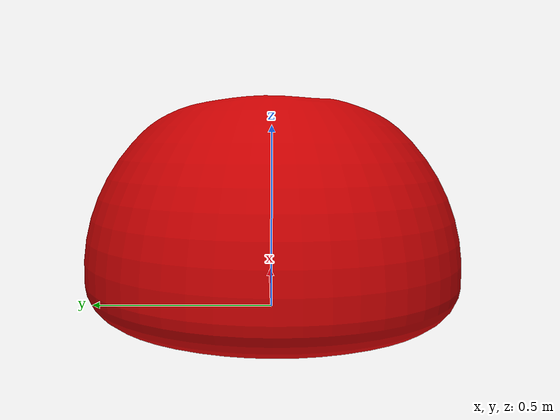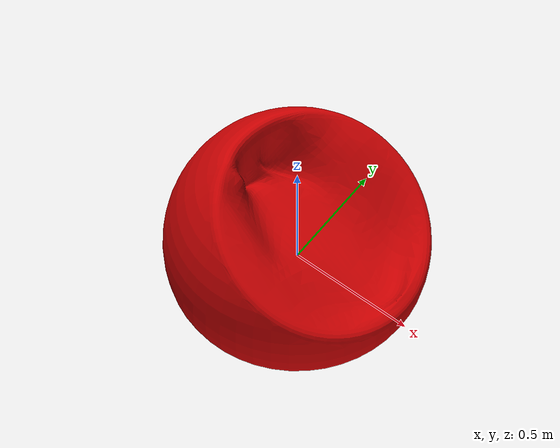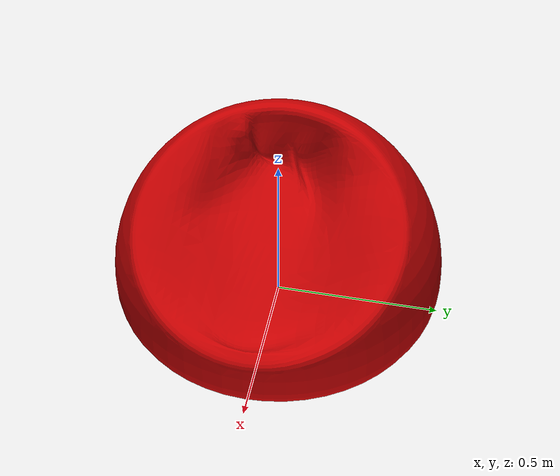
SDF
<?xml version='1.0' ?>
<sdf version='1.6'>
  <model name='bean_bag'>
    <static>false</static>
    <link name='link'>
      <collision name='collision'>
        <geometry>
          <mesh>
            <uri>model://volta_simulation/models/bean_bag/meshes/bean_bag.dae</uri>
          </mesh>
        </geometry>
        <surface>
          <friction>
            <ode>
              <mu>100</mu>
              <mu2>50</mu2>
            </ode>
          </friction>
        </surface>
      </collision>
      <visual name='visual'>
        <geometry>
          <mesh>
            <uri>model://volta_simulation/models/bean_bag/meshes/bean_bag.dae</uri>
          </mesh>
        </geometry>
      </visual>
      <inertial>
        <pose>-0.1 0 0.3 0 0 0</pose>
        <mass>10</mass>
        <inertia>
          <ixx>1.4 </ixx>
          <iyy>1.4 </iyy>
          <izz>1.36</izz>
          <ixy>0</ixy>
          <ixz>0.12</ixz>
          <iyz>0</iyz>
        </inertia>
      </inertial>
    </link>
  </model>
</sdf>
